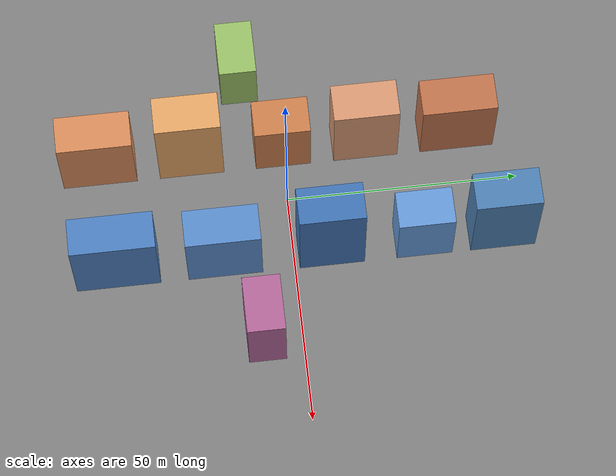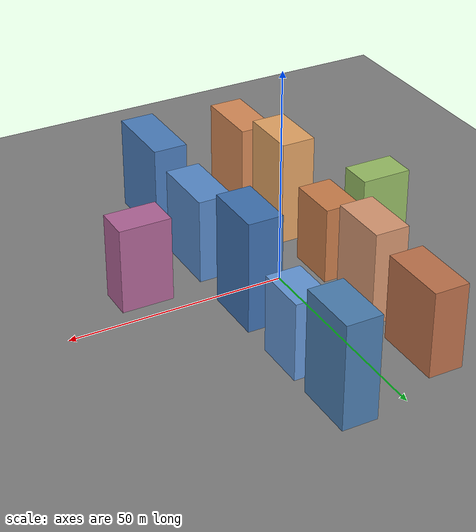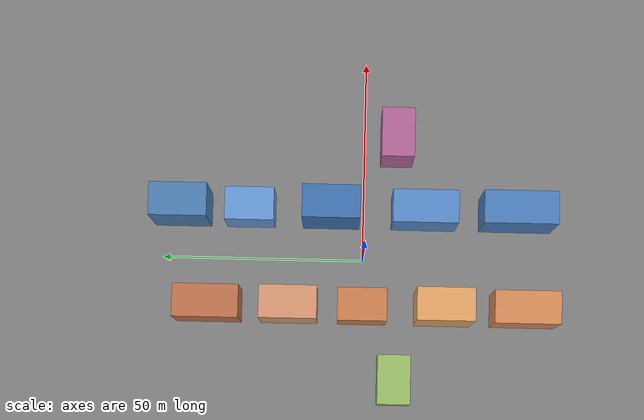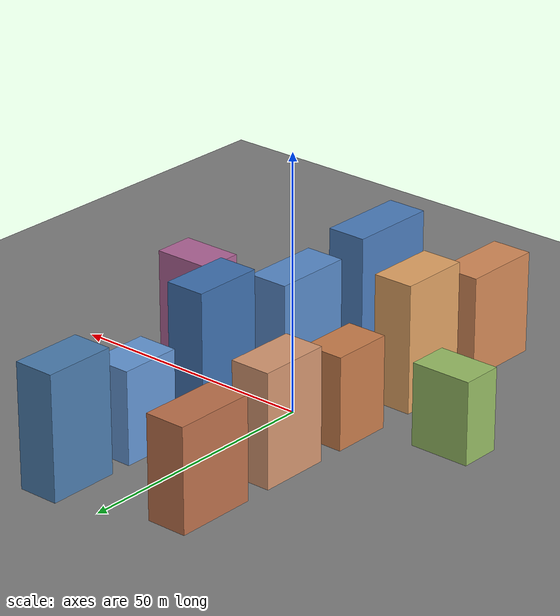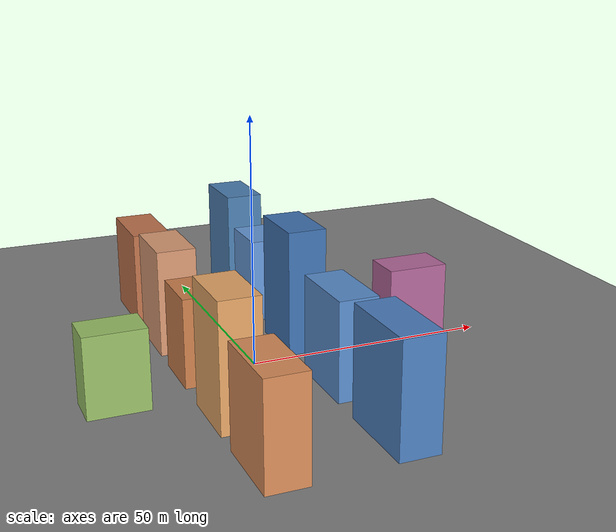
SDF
<?xml version="1.0" ?>
<!-- Scenario 3: Street Canyon Environment
     Long straight street with buildings on both sides
     Expected: 3GPP UMi model should perform best, reflections important -->
<sdf version="1.8">
  <world name="scenario_street_canyon">

    <physics name="1ms" type="ignored">
      <max_step_size>0.001</max_step_size>
      <real_time_factor>1.0</real_time_factor>
    </physics>

    <plugin filename="ignition-gazebo-physics-system"
            name="ignition::gazebo::systems::Physics"/>
    <plugin filename="ignition-gazebo-scene-broadcaster-system"
            name="ignition::gazebo::systems::SceneBroadcaster"/>
    <plugin filename="ignition-gazebo-user-commands-system"
            name="ignition::gazebo::systems::UserCommands"/>

    <plugin filename="libHeatmapPlugin.so"
            name="heatmap_plugin::HeatmapPlugin">
      <grid_w>128</grid_w>
      <grid_h>128</grid_h>
      <cell_size>0.5</cell_size>
      <frequency_hz>3500000000</frequency_hz>
      <tx_dbm>30.0</tx_dbm>
      <tx_height>8.0</tx_height>
      <rx_height>1.5</rx_height>
      <tx_gain_dbi>8.0</tx_gain_dbi>
      <rx_gain_dbi>0.0</rx_gain_dbi>
      <gnb_pose>0 0 8 0 0 0</gnb_pose>
      <propagation_model>3gpp_umi</propagation_model>
      <wall_loss_db>15.0</wall_loss_db>
      <reflection_coeff>0.75</reflection_coeff>
      <include_shadowing>false</include_shadowing>
      <max_reflections>3</max_reflections>
    </plugin>

    <light type="directional" name="sun">
      <cast_shadows>true</cast_shadows>
      <pose>0 0 30 0 0 0</pose>
      <diffuse>0.8 0.8 0.8 1</diffuse>
      <specular>0.2 0.2 0.2 1</specular>
      <direction>-0.5 0.1 -0.9</direction>
    </light>

    <!-- Ground plane - Grey -->
    <model name="ground_plane">
      <static>true</static>
      <link name="link">
        <collision name="collision">
          <geometry><plane><normal>0 0 1</normal><size>200 200</size></plane></geometry>
        </collision>
        <visual name="visual">
          <geometry><plane><normal>0 0 1</normal><size>200 200</size></plane></geometry>
          <material>
            <ambient>0.5 0.5 0.5 1</ambient>
            <diffuse>0.5 0.5 0.5 1</diffuse>
            <specular>0.1 0.1 0.1 1</specular>
            <emissive>0 0 0 1</emissive>
          </material>
        </visual>
      </link>
    </model>

    <!-- gNB on street-level pole -->
    <model name="gnb_pole">
      <static>true</static>
      <pose>0 0 4 0 0 0</pose>
      <link name="link">
        <visual name="pole">
          <geometry><cylinder><radius>0.12</radius><length>8</length></cylinder></geometry>
          <material>
            <ambient>0.3 0.3 0.3 1</ambient>
            <diffuse>0.3 0.3 0.3 1</diffuse>
            <specular>0.1 0.1 0.1 1</specular>
            <emissive>0 0 0 1</emissive>
          </material>
        </visual>
        <visual name="antenna">
          <pose>0 0 4.5 0 0 0</pose>
          <geometry><box><size>0.3 0.12 0.6</size></box></geometry>
          <material>
            <ambient>0.9 0.1 0.1 1</ambient>
            <diffuse>0.9 0.1 0.1 1</diffuse>
            <specular>0.2 0.2 0.2 1</specular>
            <emissive>0 0 0 1</emissive>
          </material>
        </visual>
      </link>
    </model>

    <!-- Main Street - West side buildings - Warm tones -->
    <model name="west_bldg_1">
      <static>true</static>
      <pose>-12 -40 10 0 0 0</pose>
      <link name="link">
        <collision name="collision"><geometry><box><size>8 16 20</size></box></geometry></collision>
        <visual name="visual">
          <geometry><box><size>8 16 20</size></box></geometry>
          <material>
            <ambient>0.85 0.55 0.35 1</ambient>
            <diffuse>0.85 0.55 0.35 1</diffuse>
            <specular>0.1 0.1 0.1 1</specular>
            <emissive>0 0 0 1</emissive>
          </material>
        </visual>
      </link>
    </model>

    <model name="west_bldg_2">
      <static>true</static>
      <pose>-12 -20 12.5 0 0 0</pose>
      <link name="link">
        <collision name="collision"><geometry><box><size>8 14 25</size></box></geometry></collision>
        <visual name="visual">
          <geometry><box><size>8 14 25</size></box></geometry>
          <material>
            <ambient>0.9 0.65 0.4 1</ambient>
            <diffuse>0.9 0.65 0.4 1</diffuse>
            <specular>0.1 0.1 0.1 1</specular>
            <emissive>0 0 0 1</emissive>
          </material>
        </visual>
      </link>
    </model>

    <model name="west_bldg_3">
      <static>true</static>
      <pose>-12 0 9 0 0 0</pose>
      <link name="link">
        <collision name="collision"><geometry><box><size>8 12 18</size></box></geometry></collision>
        <visual name="visual">
          <geometry><box><size>8 12 18</size></box></geometry>
          <material>
            <ambient>0.8 0.5 0.3 1</ambient>
            <diffuse>0.8 0.5 0.3 1</diffuse>
            <specular>0.1 0.1 0.1 1</specular>
            <emissive>0 0 0 1</emissive>
          </material>
        </visual>
      </link>
    </model>

    <model name="west_bldg_4">
      <static>true</static>
      <pose>-12 18 11 0 0 0</pose>
      <link name="link">
        <collision name="collision"><geometry><box><size>8 14 22</size></box></geometry></collision>
        <visual name="visual">
          <geometry><box><size>8 14 22</size></box></geometry>
          <material>
            <ambient>0.85 0.6 0.45 1</ambient>
            <diffuse>0.85 0.6 0.45 1</diffuse>
            <specular>0.1 0.1 0.1 1</specular>
            <emissive>0 0 0 1</emissive>
          </material>
        </visual>
      </link>
    </model>

    <model name="west_bldg_5">
      <static>true</static>
      <pose>-12 38 10 0 0 0</pose>
      <link name="link">
        <collision name="collision"><geometry><box><size>8 16 20</size></box></geometry></collision>
        <visual name="visual">
          <geometry><box><size>8 16 20</size></box></geometry>
          <material>
            <ambient>0.75 0.45 0.3 1</ambient>
            <diffuse>0.75 0.45 0.3 1</diffuse>
            <specular>0.1 0.1 0.1 1</specular>
            <emissive>0 0 0 1</emissive>
          </material>
        </visual>
      </link>
    </model>

    <!-- Main Street - East side buildings - Cool tones -->
    <model name="east_bldg_1">
      <static>true</static>
      <pose>12 -38 11 0 0 0</pose>
      <link name="link">
        <collision name="collision"><geometry><box><size>8 18 22</size></box></geometry></collision>
        <visual name="visual">
          <geometry><box><size>8 18 22</size></box></geometry>
          <material>
            <ambient>0.3 0.5 0.75 1</ambient>
            <diffuse>0.3 0.5 0.75 1</diffuse>
            <specular>0.1 0.1 0.1 1</specular>
            <emissive>0 0 0 1</emissive>
          </material>
        </visual>
      </link>
    </model>

    <model name="east_bldg_2">
      <static>true</static>
      <pose>12 -15 10 0 0 0</pose>
      <link name="link">
        <collision name="collision"><geometry><box><size>8 16 20</size></box></geometry></collision>
        <visual name="visual">
          <geometry><box><size>8 16 20</size></box></geometry>
          <material>
            <ambient>0.35 0.55 0.8 1</ambient>
            <diffuse>0.35 0.55 0.8 1</diffuse>
            <specular>0.1 0.1 0.1 1</specular>
            <emissive>0 0 0 1</emissive>
          </material>
        </visual>
      </link>
    </model>

    <model name="east_bldg_3">
      <static>true</static>
      <pose>12 8 13 0 0 0</pose>
      <link name="link">
        <collision name="collision"><geometry><box><size>8 14 26</size></box></geometry></collision>
        <visual name="visual">
          <geometry><box><size>8 14 26</size></box></geometry>
          <material>
            <ambient>0.25 0.45 0.7 1</ambient>
            <diffuse>0.25 0.45 0.7 1</diffuse>
            <specular>0.1 0.1 0.1 1</specular>
            <emissive>0 0 0 1</emissive>
          </material>
        </visual>
      </link>
    </model>

    <model name="east_bldg_4">
      <static>true</static>
      <pose>12 28 9 0 0 0</pose>
      <link name="link">
        <collision name="collision"><geometry><box><size>8 12 18</size></box></geometry></collision>
        <visual name="visual">
          <geometry><box><size>8 12 18</size></box></geometry>
          <material>
            <ambient>0.4 0.6 0.85 1</ambient>
            <diffuse>0.4 0.6 0.85 1</diffuse>
            <specular>0.1 0.1 0.1 1</specular>
            <emissive>0 0 0 1</emissive>
          </material>
        </visual>
      </link>
    </model>

    <model name="east_bldg_5">
      <static>true</static>
      <pose>12 45 12 0 0 0</pose>
      <link name="link">
        <collision name="collision"><geometry><box><size>8 14 24</size></box></geometry></collision>
        <visual name="visual">
          <geometry><box><size>8 14 24</size></box></geometry>
          <material>
            <ambient>0.3 0.5 0.7 1</ambient>
            <diffuse>0.3 0.5 0.7 1</diffuse>
            <specular>0.1 0.1 0.1 1</specular>
            <emissive>0 0 0 1</emissive>
          </material>
        </visual>
      </link>
    </model>

    <!-- Cross street buildings - Accent colours -->
    <model name="cross_bldg_1">
      <static>true</static>
      <pose>-30 -8 8 0 0 0</pose>
      <link name="link">
        <collision name="collision"><geometry><box><size>12 8 16</size></box></geometry></collision>
        <visual name="visual">
          <geometry><box><size>12 8 16</size></box></geometry>
          <material>
            <ambient>0.6 0.75 0.4 1</ambient>
            <diffuse>0.6 0.75 0.4 1</diffuse>
            <specular>0.1 0.1 0.1 1</specular>
            <emissive>0 0 0 1</emissive>
          </material>
        </visual>
      </link>
    </model>

    <model name="cross_bldg_2">
      <static>true</static>
      <pose>30 -8 10 0 0 0</pose>
      <link name="link">
        <collision name="collision"><geometry><box><size>12 8 20</size></box></geometry></collision>
        <visual name="visual">
          <geometry><box><size>12 8 20</size></box></geometry>
          <material>
            <ambient>0.7 0.4 0.6 1</ambient>
            <diffuse>0.7 0.4 0.6 1</diffuse>
            <specular>0.1 0.1 0.1 1</specular>
            <emissive>0 0 0 1</emissive>
          </material>
        </visual>
      </link>
    </model>

  </world>
</sdf>
